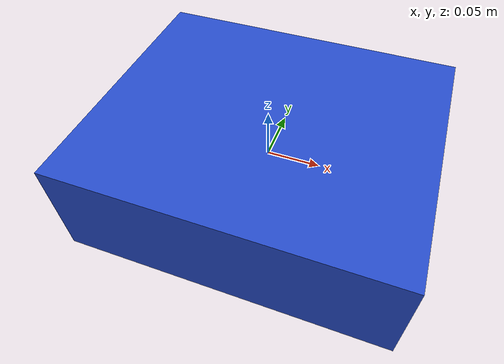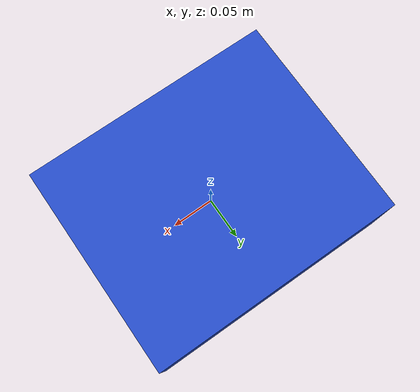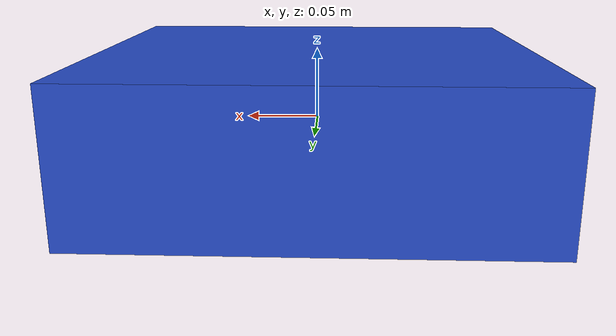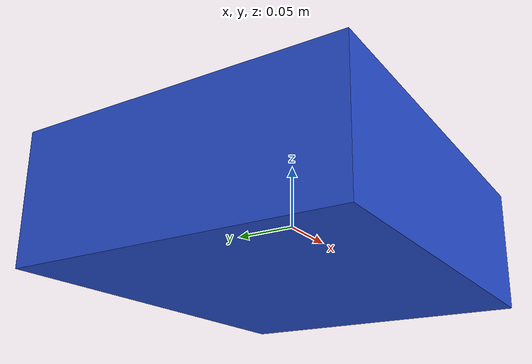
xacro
<?xml version="1.0"?>
<robot name="wave_rover" xmlns:xacro="http://www.ros.org/wiki/xacro">

  <!-- Base link -->
  <link name="base_link">
    <visual>
      <geometry>
        <box size="0.3 0.25 0.1"/>
      </geometry>
      <material name="blue"/>
    </visual>
  </link>

  <!-- IMU link -->
  <link name="imu_link"/>
  <joint name="imu_joint" type="fixed">
    <parent link="base_link"/>
    <child link="imu_link"/>
    <origin xyz="0 0 0.05"/>
  </joint>

  <!-- Odometry frame -->
  <link name="odom"/>
  <joint name="odom_to_base" type="fixed">
    <parent link="odom"/>
    <child link="base_link"/>
  </joint>

</robot>
